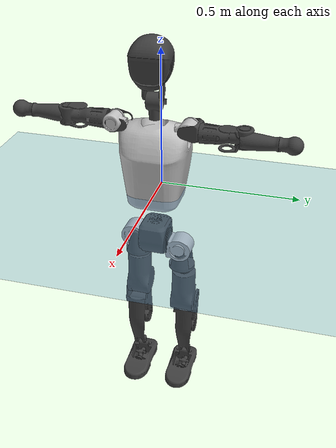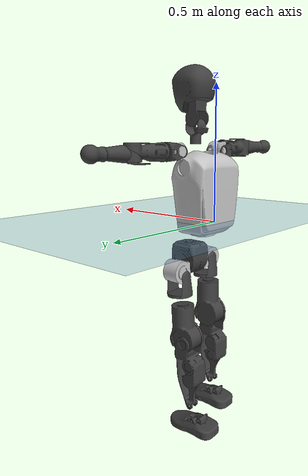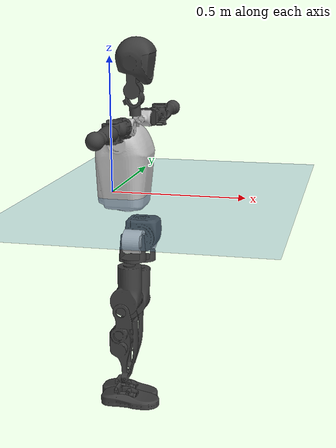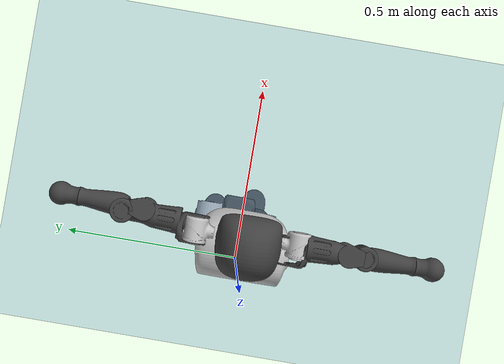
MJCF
<mujoco model="T1">
  <compiler angle="radian" assetdir="assets" balanceinertia="true" inertiafromgeom="false"/>

  <option timestep="0.005" density="1.2" viscosity="2e-05"/>

  <size nkey="1"/>

  <visual>
    <quality shadowsize="8192"/>
    <map shadowclip="0.5"/>
  </visual>

  <default>
    <default class="/">
      <joint armature="0.01" damping="0.01" frictionloss="0.1"/>
      <geom contype="0" conaffinity="0" group="1" solref="-1000 -80"/>
      <site size="0.01 0.005 0.005" group="5"/>
      <general forcelimited="true" biastype="affine" gainprm="25" biasprm="0 -25 -0.6"/>
      <default class="t1">
        <geom rgba="0.25 0.25 0.25 1"/>
        <default class="visual">
          <geom type="mesh" group="2"/>
        </default>
        <default class="collision">
          <geom group="3"/>
        </default>
        <default class="foot">
          <geom size="0.1115 0.05 0.015" type="box" condim="6" group="4" priority="1" solimp="0.015 1 0.015"/>
        </default>
        <default class="reward_collision_sphere">
          <geom group="5" rgba="1 0 0 1"/>
        </default>
      </default>
    </default>
  </default>

  <asset>
    <texture type="skybox" colorspace="auto" name="//unnamed_texture_0" builtin="gradient" rgb1="0.95 0.95 0.95" rgb2="0.95 0.95 0.95" width="100" height="600"/>
    <texture type="2d" colorspace="auto" name="texplane" builtin="checker" rgb1="0.345 0.575 0.748" rgb2="0.345 0.575 0.748" markrgb="1 1 1" width="512" height="512"/>
    <material name="MatPlane" class="/" texture="texplane" texuniform="true" texrepeat="2 2" specular="0.9"/>
    <mesh name="Trunk" class="/" file="Trunk.stl"/>
    <mesh name="H1" class="/" file="H1.stl"/>
    <mesh name="H2" class="/" file="H2.stl"/>
    <mesh name="AL1" class="/" file="AL1.stl"/>
    <mesh name="AL2" class="/" file="AL2.stl"/>
    <mesh name="AL3" class="/" file="AL3.stl"/>
    <mesh name="left_hand_link" class="/" file="left_hand_link.stl"/>
    <mesh name="AR1" class="/" file="AR1.stl"/>
    <mesh name="AR2" class="/" file="AR2.stl"/>
    <mesh name="AR3" class="/" file="AR3.stl"/>
    <mesh name="right_hand_link" class="/" file="right_hand_link.stl"/>
    <mesh name="Waist" class="/" file="Waist.stl"/>
    <mesh name="Hip_Pitch_Left" class="/" file="Hip_Pitch_Left.stl"/>
    <mesh name="Hip_Roll_Left" class="/" file="Hip_Roll_Left.stl"/>
    <mesh name="Hip_Yaw_Left" class="/" file="Hip_Yaw_Left.stl"/>
    <mesh name="Shank_Left" class="/" file="Shank_Left.stl"/>
    <mesh name="Ankle_Cross_Left" class="/" file="Ankle_Cross_Left.stl"/>
    <mesh name="left_foot_link" class="/" file="left_foot_link.stl"/>
    <mesh name="Hip_Pitch_Right" class="/" file="Hip_Pitch_Right.stl"/>
    <mesh name="Hip_Roll_Right" class="/" file="Hip_Roll_Right.stl"/>
    <mesh name="Hip_Yaw_Right" class="/" file="Hip_Yaw_Right.stl"/>
    <mesh name="Shank_Right" class="/" file="Shank_Right.stl"/>
    <mesh name="Ankle_Cross_Right" class="/" file="Ankle_Cross_Right.stl"/>
    <mesh name="right_foot_link" class="/" file="right_foot_link.stl"/>
  </asset>

  <worldbody>
    <geom name="floor" class="/" size="100 100 0.125" type="plane" group="0" material="MatPlane"/>
    <light name="toplight_shadow" class="/" pos="0 0 5" dir="0.0990148 0.0990148 -0.990148" type="directional" ambient="0.04 0.04 0.04" diffuse="0.55 0.55 0.55" specular="0.12 0.12 0.12"/>
    <light name="toplight_fill" class="/" pos="0 0 5" dir="0.0990148 0.0990148 -0.990148" type="directional" castshadow="false" ambient="0.04 0.04 0.04" diffuse="0.3 0.3 0.3" specular="0.08 0.08 0.08"/>
    <body name="trunk" childclass="t1" pos="0.000313132 -0.00631854 -0.0137387" quat="1 -0.000498186 0.00024867 -0.000355382">
      <inertial pos="0.0889459 0.011863 0.122361" quat="0.998114 0.0389051 -0.0213934 -0.0423996" mass="20.449" diaginertia="0.787508 0.0161615 0.170883"/>
      <joint name="//unnamed_joint_0" type="free" armature="0" damping="0" frictionloss="0"/>
      <geom name="//unnamed_geom_1" class="visual" rgba="0.76 0.76 0.76 1" mesh="Trunk"/>
      <geom name="//unnamed_geom_2" class="collision" size="0.0864086 0.115211 0.172817" pos="0.0931439 0 0.144604" type="box"/>
      <geom name="//unnamed_geom_3" class="reward_collision_sphere" size="0.132493" pos="0.0931439 0 0.120504"/>
      <geom name="//unnamed_geom_4" class="reward_collision_sphere" size="0.0172817" pos="0.0931439 0.0594071 0"/>
      <geom name="//unnamed_geom_5" class="reward_collision_sphere" size="0.0172817" pos="0.0931439 -0.0594071 0"/>
      <geom name="//unnamed_geom_6" class="reward_collision_sphere" size="0.0172817" pos="0.0931439 0.0747831 0.216907"/>
      <geom name="//unnamed_geom_7" class="reward_collision_sphere" size="0.0172817" pos="0.0931439 -0.0747831 0.216907"/>
      <site name="imu" pos="0.00195688 -0.0768576 0.0470216" size="0.0115211"/>
      <camera name="track" pos="0 -1.39781 0" quat="0.707107 0.707107 0 0" mode="trackcom"/>
      <camera name="ego_camera" pos="0.189393 0 0.506115" quat="-0.5 -0.5 0.5 0.5"/>
      <body name="H1" pos="0.0909453 0.0109403 0.300908" quat="0.999972 0.00551812 -0.00511262 -0.00034735">
        <inertial pos="0.00035613 0.0039728 0.0596575" quat="0.750343 -0.0442494 -0.0180361 0.659319" mass="0.891808" diaginertia="0.00271424 3.5619e-05 0.000458763"/>
        <joint name="AAHead_yaw" pos="0 0 0" axis="-0.00170277 0.0422977 0.999104" stiffness="0.00767645" range="-1.75935 1.22656" armature="0.0134156" damping="0.0762227" frictionloss="0.185032"/>
        <geom name="//unnamed_geom_8" class="visual" mesh="H1"/>
        <body name="H2" pos="-0.00240744 -0.00423842 0.0931846" quat="0.999958 -0.00122544 -0.00628401 0.00652546">
          <inertial pos="0.0216652 -0.0118977 0.105181" quat="0.991616 0.103708 -0.0143371 -0.0757417" mass="0.931186" diaginertia="0.0175434 0.000293911 0.00446147"/>
          <joint name="Head_pitch" pos="0 0 0" axis="0.0371954 -0.997711 0.0564725" stiffness="0.0604015" range="-1.3588 0.299835" armature="0.0100097" damping="0.00519902" frictionloss="0.0979223"/>
          <geom name="//unnamed_geom_9" class="visual" mesh="H2"/>
          <geom name="//unnamed_geom_10" class="collision" size="0.0921691" pos="0.015524 0 0.132554"/>
          <geom name="//unnamed_geom_11" class="reward_collision_sphere" size="0.10369" pos="0.031048 0 0.120504"/>
        </body>
      </body>
      <body name="AL1" pos="0.0906851 0.0802875 0.276404" quat="0.999998 0.000937726 0.000839903 -0.00138889">
        <inertial pos="-0.00926809 0.0428296 2.07459e-05" quat="0.506094 0.530523 -0.52837 0.428063" mass="0.896813" diaginertia="0.0162415 0.000253737 0.000908325"/>
        <joint name="Left_Shoulder_Pitch" pos="0 0 0" axis="0.0481291 0.998442 0.0282361" stiffness="0.0556213" range="-3.64073 1.19381" armature="0.0195267" damping="0.0632686" frictionloss="0.173099"/>
        <geom name="//unnamed_geom_12" class="visual" rgba="0.76 0.76 0.76 1" mesh="AL1"/>
        <body name="AL2" pos="0.00129829 0.0368592 -0.0011645" quat="0.999968 -0.00071168 0.00295975 -0.00738692">
          <inertial pos="-0.0116038 0.015452 0.00154124" quat="0.490667 0.465451 -0.513218 0.528402" mass="0.304644" diaginertia="0.00447237 7.2742e-05 0.000496189"/>
          <joint name="Left_Shoulder_Roll" pos="0 0 0" axis="-0.99993 0.00235041 0.0116011" stiffness="0.0313384" range="-1.56977 1.87197" armature="0.00423741" damping="0" frictionloss="0.145193"/>
          <geom name="//unnamed_geom_13" class="visual" mesh="AL2"/>
          <body name="AL3" pos="0.0128759 0.0518063 -0.00107039" quat="0.99997 0.00559116 -0.00497681 -0.00195401">
            <inertial pos="-0.0165649 0.0532974 -0.0106586" quat="0.641148 0.767193 -0.0159122 -0.00952387" mass="1.21178" diaginertia="0.098817 0.00127463 0.00116423"/>
            <joint name="Left_Elbow_Pitch" pos="0 0 0" axis="-0.0324839 -0.999288 0.0192156" range="-2.19531 1.9205" armature="0.00368351" damping="0" frictionloss="0.0146262"/>
            <geom name="//unnamed_geom_14" class="visual" mesh="AL3"/>
            <geom name="//unnamed_geom_15" class="collision" size="0.0345634 0.0864086" pos="0 0.0349454 0" quat="0.707105 0.707108 0 0" type="cylinder"/>
            <geom name="//unnamed_geom_16" class="reward_collision_sphere" size="0.0414761"/>
            <body name="left_hand_link" pos="0.0121846 0.0933208 -0.00500403" quat="0.999963 0.0015852 0.00842304 0.000671517">
              <inertial pos="0.00641302 0.0633834 -0.0034716" quat="0.728629 0.68465 -0.0086179 0.0167211" mass="0.556709" diaginertia="0.0570049 0.00109809 0.000637615"/>
              <joint name="Left_Elbow_Yaw" pos="0 0 0" axis="0.0710941 0.021937 0.997228" range="-2.22693 -0.34766" armature="0.0191843" damping="0.0855493" frictionloss="0.0528615"/>
              <geom name="//unnamed_geom_17" class="visual" mesh="left_hand_link"/>
              <geom name="//unnamed_geom_18" class="collision" size="0.0345634 0.10081" pos="0 0.0908579 0" quat="0.707105 0.707108 0 0" type="cylinder"/>
              <geom name="//unnamed_geom_19" class="reward_collision_sphere" size="0.0576057"/>
              <geom name="//unnamed_geom_20" class="reward_collision_sphere" size="0.040324" pos="0 0.0768798 0"/>
              <geom name="//unnamed_geom_21" class="reward_collision_sphere" size="0.040324" pos="0 0.150265 0"/>
            </body>
          </body>
        </body>
      </body>
      <body name="AR1" pos="0.0951574 -0.0881539 0.280069" quat="0.999998 -0.00109456 -0.00113591 0.000795468">
        <inertial pos="-0.00207329 -0.0163747 -0.00283977" quat="0.534675 0.488983 -0.501655 0.472609" mass="0.700546" diaginertia="0.0128665 0.000245564 0.000777639"/>
        <joint name="Right_Shoulder_Pitch" pos="0 0 0" axis="-0.0509047 -0.996026 -0.0730876" stiffness="0.0515079" range="-1.20652 2.98118" armature="0.0149306" damping="0" frictionloss="0.212253"/>
        <geom name="//unnamed_geom_22" class="visual" rgba="0.76 0.76 0.76 1" mesh="AR1"/>
        <body name="AR2" pos="-0.0181245 -0.016636 -0.00745269" quat="1 -0.000181862 -0.000568161 -0.000208164">
          <inertial pos="-0.00756506 -0.0286804 -0.00414143" quat="0.478467 0.488728 -0.537294 0.493488" mass="0.154395" diaginertia="0.00294195 5.19749e-05 0.000374332"/>
          <joint name="Right_Shoulder_Roll" pos="0 0 0" axis="-0.997305 -0.0483302 -0.055192" stiffness="0.0714186" range="-1.7737 1.3011" armature="0.0150274" damping="0.0837299" frictionloss="0.031958"/>
          <geom name="//unnamed_geom_23" class="visual" mesh="AR2"/>
          <body name="AR3" pos="0.0150406 -0.0490119 0.010251" quat="0.999985 -0.00133573 0.00527629 -0.000840098">
            <inertial pos="0.00170739 -0.0736539 -0.00222667" quat="0.687301 0.725221 -0.00291094 -0.0407894" mass="0.985779" diaginertia="0.0881455 0.00165911 0.00123405"/>
            <joint name="Right_Elbow_Pitch" pos="0 0 0" axis="-0.0224663 0.999747 -0.00144863" stiffness="0.0931843" range="-1.99074 2.56865" armature="0.0142816" damping="0.0339536" frictionloss="0.123866"/>
            <geom name="//unnamed_geom_24" class="visual" mesh="AR3"/>
            <geom name="//unnamed_geom_25" class="collision" size="0.0345634 0.0864086" pos="0 -0.0349454 0" quat="0.707105 0.707108 0 0" type="cylinder"/>
            <geom name="//unnamed_geom_26" class="reward_collision_sphere" size="0.0414761"/>
            <body name="right_hand_link" pos="0.000320662 -0.104339 0.000599687" quat="1 4.48698e-05 -1.31043e-06 1.33387e-06">
              <inertial pos="0.00499459 -0.0791769 0.0175628" quat="0.737842 0.673781 -0.0273689 -0.0293115" mass="0.70314" diaginertia="0.0791648 0.00167473 0.00060823"/>
              <joint name="Right_Elbow_Yaw" pos="0 0 0" axis="0.0391216 0.0518088 0.99789" range="-0.183237 2.13631" armature="0.0153311" damping="0.00167047" frictionloss="0.141654"/>
              <geom name="//unnamed_geom_27" class="visual" mesh="right_hand_link"/>
              <geom name="//unnamed_geom_28" class="collision" size="0.0345634 0.10081" pos="0 -0.0908579 0" quat="0.707105 0.707108 0 0" type="cylinder"/>
              <geom name="//unnamed_geom_29" class="reward_collision_sphere" size="0.0576057"/>
              <geom name="//unnamed_geom_30" class="reward_collision_sphere" size="0.040324" pos="0 -0.0768798 0"/>
              <geom name="//unnamed_geom_31" class="reward_collision_sphere" size="0.040324" pos="0 -0.150265 0"/>
            </body>
          </body>
        </body>
      </body>
      <body name="Waist" pos="0.115833 0.0149988 -0.146038" quat="0.999976 -0.00394634 -0.000855438 -0.00571355">
        <inertial pos="-0.000906669 0.0139198 0.0031294" quat="0.983607 0.00123932 -0.180283 0.00375156" mass="4.02138" diaginertia="0.0633343 0.00109148 0.016467"/>
        <joint name="Waist" pos="0 0 0" axis="0.0600922 -0.00160769 0.998192" range="-1.51542 1.63742" armature="0.00644317" damping="0.0488446" frictionloss="0.211031"/>
        <geom name="//unnamed_geom_32" class="visual" mesh="Waist"/>
        <body name="Hip_Pitch_Left" pos="-0.00932793 0.0904332 -0.0141206" quat="0.999974 -0.00252619 0.00456893 0.00503886">
          <inertial pos="-0.00217931 0.00209898 -0.0212385" quat="0.965386 0.259382 -0.0136338 0.0237521" mass="1.54453" diaginertia="0.0199366 0.000215062 0.00406052"/>
          <joint name="Left_Hip_Pitch" pos="0 0 0" axis="-0.021777 0.999431 -0.0257442" stiffness="0.0811813" range="-1.69189 1.40814" armature="0.0156138" damping="0" frictionloss="0.0622757"/>
          <geom name="//unnamed_geom_33" class="visual" rgba="0.76 0.76 0.76 1" mesh="Hip_Pitch_Left"/>
          <body name="Hip_Roll_Left" pos="-0.0156073 0.00532331 -0.0355687" quat="0.999958 -0.00739158 0.00515971 0.00149206">
            <inertial pos="0.0179775 0.014449 -0.0723889" quat="0.715064 -0.0877735 0.0249509 0.693078" mass="0.515313" diaginertia="0.0171503 0.000216098 0.00132877"/>
            <joint name="Left_Hip_Roll" pos="0 0 0" axis="-0.995884 0.045223 0.0785479" stiffness="0.0161108" range="-1.29958 -0.121027" armature="0.00318398" damping="0" frictionloss="0.140687"/>
            <geom name="//unnamed_geom_34" class="visual" mesh="Hip_Roll_Left"/>
            <geom name="//unnamed_geom_35" class="reward_collision_sphere" size="0.0633663"/>
            <body name="Hip_Yaw_Left" pos="-0.0187039 0.00483349 -0.113554" quat="0.999966 -0.000149024 0.0075196 0.0035235">
              <inertial pos="-0.0173022 0.00495203 -0.0967598" quat="0.694199 -0.0447967 -0.00411995 0.718376" mass="3.78879" diaginertia="0.293441 0.0046547 0.00593858"/>
              <joint name="Left_Hip_Yaw" pos="0 0 0" axis="-0.0455059 0.026467 -0.998613" range="-1.14823 1.34141" armature="0.00864043" damping="0.0386729" frictionloss="0.0554311"/>
              <geom name="//unnamed_geom_36" class="visual" mesh="Hip_Yaw_Left"/>
              <geom name="//unnamed_geom_37" class="collision" size="0.0576057 0.0921691" type="cylinder"/>
              <body name="Shank_Left" pos="-0.0314137 0.00831902 -0.144162" quat="0.999998 -8.00309e-05 0.000222485 0.00172686">
                <inertial pos="-0.0238564 0.0154269 -0.15463" quat="0.99588 -0.0152598 -0.00887904 0.0889444" mass="2.72327" diaginertia="0.314767 0.00607717 0.00395509"/>
                <joint name="Left_Knee_Pitch" pos="0 0 0" axis="0.0122484 0.999919 -0.00346306" range="-0.226635 2.14523" armature="0.0103783" damping="0" frictionloss="0.0865566"/>
                <geom name="//unnamed_geom_38" class="visual" mesh="Shank_Left"/>
                <geom name="//unnamed_geom_39" class="collision" size="0.0576057 0.0864086" pos="0 0 -0.144604" type="cylinder"/>
                <geom name="//unnamed_geom_40" class="reward_collision_sphere" size="0.0748874"/>
                <body name="Ankle_Cross_Left" pos="-0.000880298 -0.000179164 -0.354153" quat="0.999985 -0.00242654 0.00257603 -0.00428714">
                  <inertial pos="-0.0190514 -0.00838799 0.0013182" quat="0.44542 0.547917 0.543429 0.453953" mass="0.0991698" diaginertia="0.000252529 5.31333e-06 3.17853e-05"/>
                  <joint name="Left_Ankle_Pitch" pos="0 0 0" axis="-0.050186 0.998708 0.00800963" range="-0.708042 0.181715" armature="0.00867046" damping="0" frictionloss="0.190904"/>
                  <geom name="//unnamed_geom_41" class="visual" mesh="Ankle_Cross_Left"/>
                  <body name="left_foot_link" pos="0.00117374 -0.0109836 -0.0118702" quat="0.999994 0.000130394 0.000139263 -0.00353053">
                    <inertial pos="-0.00915039 -0.0142966 -0.00812917" quat="0.0055249 0.571967 0.000296751 0.820258" mass="1.13729" diaginertia="0.0169012 0.000308768 0.00436886"/>
                    <joint name="Left_Ankle_Roll" pos="0 0 0" axis="-0.998241 -0.017535 0.056626" range="-0.271038 0.107435" armature="0.00216578" damping="0" frictionloss="0.0648744"/>
                    <geom name="//unnamed_geom_42" class="visual" mesh="left_foot_link"/>
                    <geom name="left_foot" class="foot" size="0.0858516 0.0600374 0.0221475" pos="0.015524 0 -0.0180756"/>
                    <geom name="//unnamed_geom_44" class="reward_collision_sphere" size="0.0599099" pos="0.015524 0 -0.0180756"/>
                    <geom name="//unnamed_geom_45" class="reward_collision_sphere" size="0.0345634" pos="0.147478 -0.0160749 -0.0180756"/>
                    <geom name="//unnamed_geom_46" class="reward_collision_sphere" size="0.0345634" pos="-0.108668 -0.0160749 -0.0180756"/>
                    <site name="left_foot" class="foot" pos="0.015524 0 -0.0180756" size="0.0115211"/>
                  </body>
                </body>
              </body>
            </body>
          </body>
        </body>
        <body name="Hip_Pitch_Right" pos="-0.0148054 -0.0817062 0.0137239" quat="0.999998 0.000277286 0.0018655 0.000491918">
          <inertial pos="0.0163406 -0.00121699 -0.0223628" quat="0.980103 -0.19562 -0.0144587 0.030361" mass="1.97205" diaginertia="0.0188955 0.00028012 0.00356901"/>
          <joint name="Right_Hip_Pitch" pos="0 0 0" axis="-0.036473 -0.999215 -0.0154666" stiffness="0.0519926" range="-1.70622 2.02787" armature="0.00142065" damping="0.00516277" frictionloss="0.175802"/>
          <geom name="//unnamed_geom_47" class="visual" rgba="0.76 0.76 0.76 1" mesh="Hip_Pitch_Right"/>
          <body name="Hip_Roll_Right" pos="-0.00561147 0.0111368 -0.0185994" quat="0.999997 -0.000258788 0.000811868 -0.0022826">
            <inertial pos="-0.00174065 0.0167095 -0.0512236" quat="0.747294 -0.054749 0.00891778 0.662175" mass="0.669159" diaginertia="0.018055 0.000298701 0.00159067"/>
            <joint name="Right_Hip_Roll" pos="0 0 0" axis="-0.999632 0.0110259 -0.024773" stiffness="0.0389741" range="-0.109042 1.57724" armature="0.0131505" damping="0" frictionloss="0.195272"/>
            <geom name="//unnamed_geom_48" class="visual" mesh="Hip_Roll_Right"/>
            <geom name="//unnamed_geom_49" class="reward_collision_sphere" size="0.0633663"/>
            <body name="Hip_Yaw_Right" pos="-0.0146135 -0.00272877 -0.09881" quat="0.999978 0.00425824 -0.00506687 0.000730038">
              <inertial pos="-0.0106405 0.0180617 -0.117594" quat="0.687491 -0.046555 -0.0151099 0.724542" mass="3.50054" diaginertia="0.292109 0.00530226 0.00888343"/>
              <joint name="Right_Hip_Yaw" pos="0 0 0" axis="0.0503743 0.0282635 -0.99833" range="-0.779655 0.709116" armature="0.0150632" damping="0" frictionloss="0.116075"/>
              <geom name="//unnamed_geom_50" class="visual" mesh="Hip_Yaw_Right"/>
              <geom name="//unnamed_geom_51" class="collision" size="0.0576057 0.0921691" type="cylinder"/>
              <body name="Shank_Right" pos="-0.0215603 -0.0112091 -0.168343" quat="1 -0.000130884 5.64849e-05 0.000222925">
                <inertial pos="-0.0112081 0.00119421 -0.137944" quat="0.99898 0.0179724 0.00162108 -0.0413965" mass="3.34171" diaginertia="0.461553 0.0076418 0.00593489"/>
                <joint name="Right_Knee_Pitch" pos="0 0 0" axis="0.000542999 -0.999999 -0.00142787" stiffness="0.0754267" range="-2.55527 -0.192739" armature="0.01113" damping="0" frictionloss="0.0976164"/>
                <geom name="//unnamed_geom_52" class="visual" mesh="Shank_Right"/>
                <geom name="//unnamed_geom_53" class="collision" size="0.0576057 0.0864086" pos="0 0 -0.144604" type="cylinder"/>
                <geom name="//unnamed_geom_54" class="reward_collision_sphere" size="0.0748874"/>
                <body name="Ankle_Cross_Right" pos="0.00892894 0.00245339 -0.340041" quat="0.999974 0.00357556 0.00625722 -0.00088761">
                  <inertial pos="0.00138073 -0.00228199 0.00691598" quat="0.402512 0.602319 0.504467 0.469797" mass="0.137929" diaginertia="0.000382717 4.2149e-06 4.17627e-05"/>
                  <joint name="Right_Ankle_Pitch" pos="0 0 0" axis="-0.0317671 -0.997383 -0.0649408" stiffness="0.072928" range="-0.610579 0.689303" armature="0.0113545" damping="0.0737369" frictionloss="0.197364"/>
                  <geom name="//unnamed_geom_55" class="visual" mesh="Ankle_Cross_Right"/>
                  <body name="right_foot_link" pos="-0.00082817 -0.00105837 -0.0157215" quat="0.999989 -0.00293162 0.00170929 0.00314595">
                    <inertial pos="0.0178871 0.0130492 -0.0118335" quat="0.0556139 0.603015 0.0270896 0.795328" mass="1.02486" diaginertia="0.0262326 0.000435982 0.00704963"/>
                    <joint name="Right_Ankle_Roll" pos="0 0 0" axis="-0.999994 0.000807202 0.00347604" range="-0.30701 0.355569" armature="0.00552438" damping="0" frictionloss="0.0969344"/>
                    <geom name="//unnamed_geom_56" class="visual" mesh="right_foot_link"/>
                    <geom name="right_foot" class="foot" size="0.100737 0.0342482 0.0182179" pos="0.015524 0 -0.0180756"/>
                    <geom name="//unnamed_geom_58" class="reward_collision_sphere" size="0.0460846"/>
                    <geom name="//unnamed_geom_59" class="reward_collision_sphere" size="0.0345634" pos="0.015524 0 -0.0180756"/>
                    <geom name="//unnamed_geom_60" class="reward_collision_sphere" size="0.0345634" pos="0.147478 0.0160749 -0.0180756"/>
                    <geom name="//unnamed_geom_61" class="reward_collision_sphere" size="0.0345634" pos="-0.108668 0.0160749 -0.0180756"/>
                    <site name="right_foot" class="foot" pos="0.015524 0 -0.0180756" size="0.0115211"/>
                  </body>
                </body>
              </body>
            </body>
          </body>
        </body>
      </body>
    </body>
  </worldbody>

  <contact>
    <pair class="/" geom1="floor" geom2="left_foot" name="//unnamed_contact_0"/>
    <pair class="/" geom1="floor" geom2="right_foot" name="//unnamed_contact_1"/>
  </contact>

  <actuator>
    <general name="AAHead_yaw" class="/" joint="AAHead_yaw" forcerange="-4.19411 4.19411" gainprm="25.0686" biasprm="0 -25.0686 -0.896514"/>
    <general name="Head_pitch" class="/" joint="Head_pitch" forcerange="-4.03966 4.03966" gainprm="25.0686" biasprm="0 -25.0686 -0.896514"/>
    <general name="Left_Shoulder_Pitch" class="/" joint="Left_Shoulder_Pitch" forcerange="-27.9459 27.9459" gainprm="25.0686" biasprm="0 -25.0686 -0.896514"/>
    <general name="Left_Shoulder_Roll" class="/" joint="Left_Shoulder_Roll" forcerange="-16.2504 16.2504" gainprm="25.0686" biasprm="0 -25.0686 -0.896514"/>
    <general name="Left_Elbow_Pitch" class="/" joint="Left_Elbow_Pitch" forcerange="-8.16996 8.16996" gainprm="25.0686" biasprm="0 -25.0686 -0.896514"/>
    <general name="Left_Elbow_Yaw" class="/" joint="Left_Elbow_Yaw" forcerange="-30.4532 30.4532" gainprm="25.0686" biasprm="0 -25.0686 -0.896514"/>
    <general name="Right_Shoulder_Pitch" class="/" joint="Right_Shoulder_Pitch" forcerange="-34.127 34.127" gainprm="25.0686" biasprm="0 -25.0686 -0.896514"/>
    <general name="Right_Shoulder_Roll" class="/" joint="Right_Shoulder_Roll" forcerange="-22.8863 22.8863" gainprm="25.0686" biasprm="0 -25.0686 -0.896514"/>
    <general name="Right_Elbow_Pitch" class="/" joint="Right_Elbow_Pitch" forcerange="-7.91462 7.91462" gainprm="25.0686" biasprm="0 -25.0686 -0.896514"/>
    <general name="Right_Elbow_Yaw" class="/" joint="Right_Elbow_Yaw" forcerange="-13.3914 13.3914" gainprm="25.0686" biasprm="0 -25.0686 -0.896514"/>
    <general name="Waist" class="/" joint="Waist" forcerange="-43.656 43.656" gainprm="25.0686" biasprm="0 -25.0686 -0.896514"/>
    <general name="Left_Hip_Pitch" class="/" joint="Left_Hip_Pitch" forcerange="-68.8953 68.8953" gainprm="25.0686" biasprm="0 -25.0686 -0.896514"/>
    <general name="Left_Hip_Roll" class="/" joint="Left_Hip_Roll" forcerange="-14.1971 14.1971" gainprm="25.0686" biasprm="0 -25.0686 -0.896514"/>
    <general name="Left_Hip_Yaw" class="/" joint="Left_Hip_Yaw" forcerange="-57.7283 57.7283" gainprm="25.0686" biasprm="0 -25.0686 -0.896514"/>
    <general name="Left_Knee_Pitch" class="/" joint="Left_Knee_Pitch" forcerange="-33.0355 33.0355" gainprm="25.0686" biasprm="0 -25.0686 -0.896514"/>
    <general name="Left_Ankle_Pitch" class="/" joint="Left_Ankle_Pitch" forcerange="-39.3777 39.3777" gainprm="25.0686" biasprm="0 -25.0686 -0.896514"/>
    <general name="Left_Ankle_Roll" class="/" joint="Left_Ankle_Roll" forcerange="-19.8937 19.8937" gainprm="25.0686" biasprm="0 -25.0686 -0.896514"/>
    <general name="Right_Hip_Pitch" class="/" joint="Right_Hip_Pitch" forcerange="-51.5047 51.5047" gainprm="25.0686" biasprm="0 -25.0686 -0.896514"/>
    <general name="Right_Hip_Roll" class="/" joint="Right_Hip_Roll" forcerange="-49.2567 49.2567" gainprm="25.0686" biasprm="0 -25.0686 -0.896514"/>
    <general name="Right_Hip_Yaw" class="/" joint="Right_Hip_Yaw" forcerange="-49.2152 49.2152" gainprm="25.0686" biasprm="0 -25.0686 -0.896514"/>
    <general name="Right_Knee_Pitch" class="/" joint="Right_Knee_Pitch" forcerange="-30.4214 30.4214" gainprm="25.0686" biasprm="0 -25.0686 -0.896514"/>
    <general name="Right_Ankle_Pitch" class="/" joint="Right_Ankle_Pitch" forcerange="-12.8835 12.8835" gainprm="25.0686" biasprm="0 -25.0686 -0.896514"/>
    <general name="Right_Ankle_Roll" class="/" joint="Right_Ankle_Roll" forcerange="-28.0168 28.0168" gainprm="25.0686" biasprm="0 -25.0686 -0.896514"/>
  </actuator>

  <sensor>
    <gyro site="imu" name="imu_angular_velocity"/>
    <velocimeter site="imu" name="imu_linear_velocity"/>
    <framelinvel objtype="site" objname="left_foot" name="left_foot_global_linear_velocity"/>
    <framelinvel objtype="site" objname="right_foot" name="right_foot_global_linear_velocity"/>
  </sensor>

  <keyframe>
    <key name="home" qpos="0 0 0.6385 1 0 0 0 0 0 0 1.4 0 -0.4 0 -1.4 0 0.4 0 -0.4 0 0 0.8 -0.4 0 0.4 0 0 -0.8 0.4 0"/>
  </keyframe>
</mujoco>
